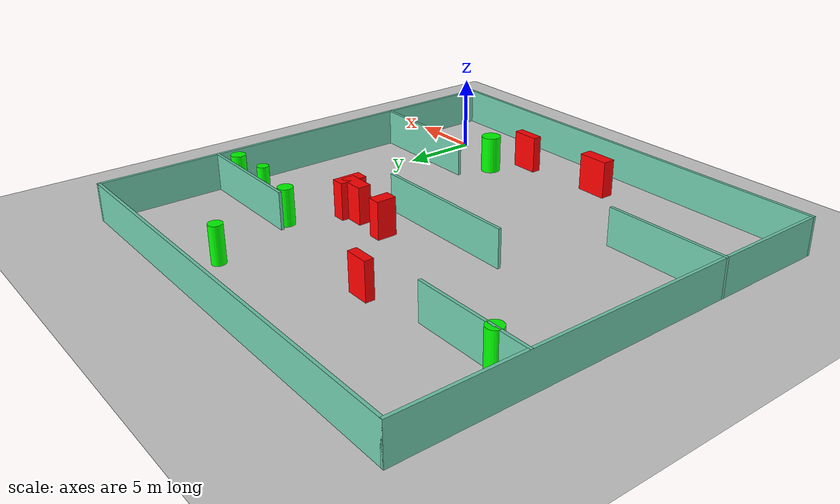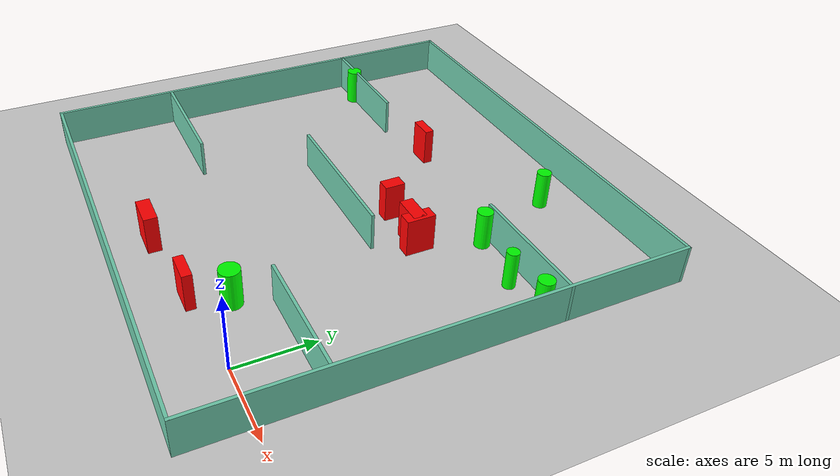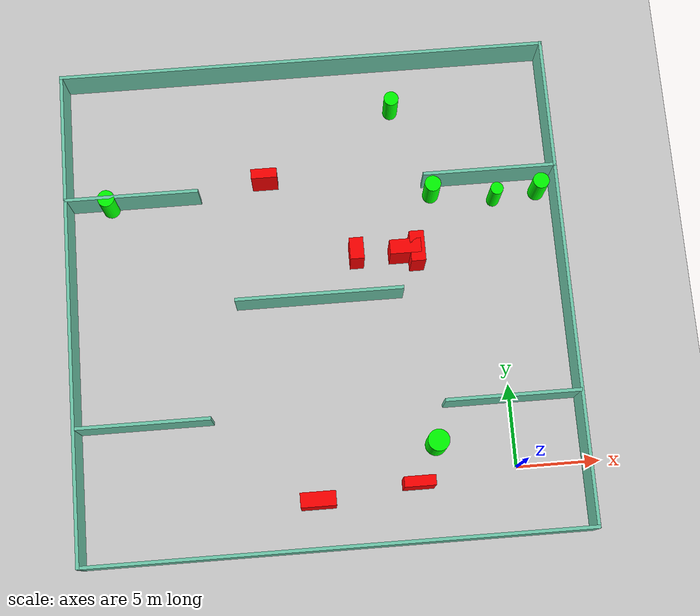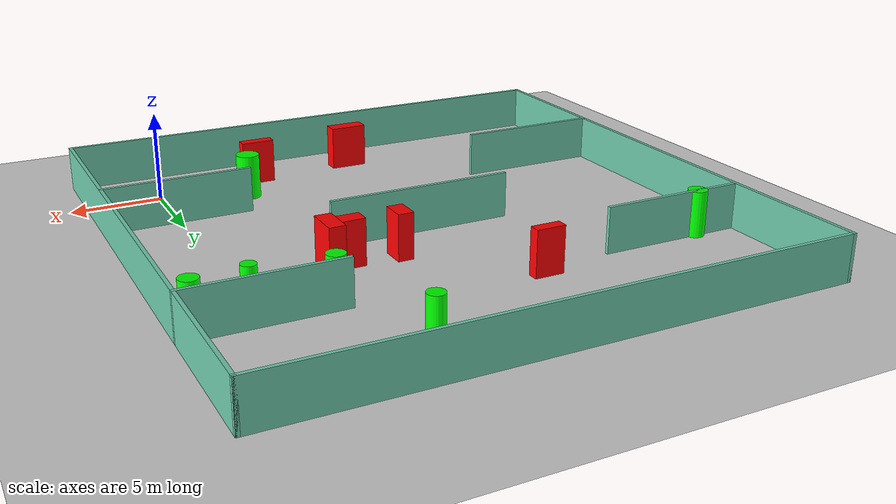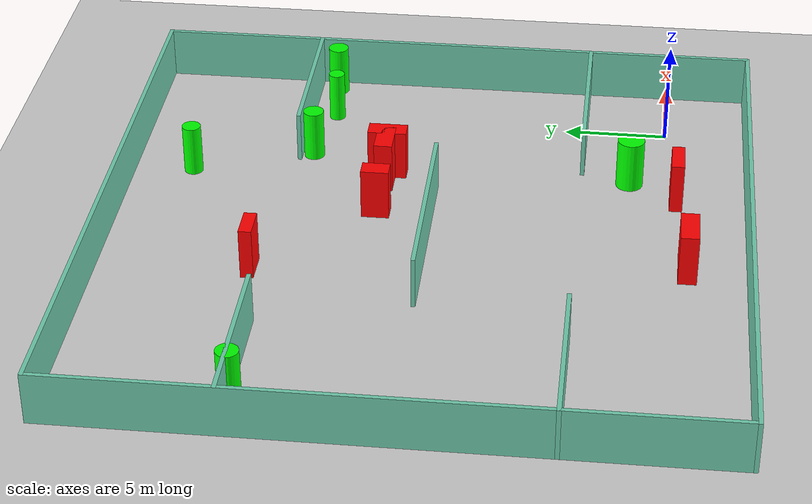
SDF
<sdf version="1.7">
 <world name="default">
  <light name="sun" type="directional">
   <pose>0 0 10 0 -0 0</pose>
   <diffuse>0.8 0.8 0.8 1</diffuse>
   <specular>0.2 0.2 0.2 1</specular>
   <attenuation>
    <range>1000</range>
    <constant>0.9</constant>
    <linear>0.01</linear>
    <quadratic>0.001</quadratic>
   </attenuation>
   <direction>-0.5 0.1 -0.9</direction>
   <spot><inner_angle>0</inner_angle><outer_angle>0</outer_angle><falloff>0</falloff></spot>
  </light>
  <model name="ground_plane">
   <static>1</static>
   <link name="link">
    <collision name="collision">
     <geometry><plane><normal>0 0 1</normal><size>100 100</size></plane></geometry>
     <surface>
      <contact><collide_bitmask>65535</collide_bitmask></contact>
      <friction><ode><mu>100</mu><mu2>50</mu2></ode></friction>
     </surface>
    </collision>
    <visual name="visual">
     <cast_shadows>0</cast_shadows>
     <geometry><plane><normal>0 0 1</normal><size>100 100</size></plane></geometry>
     <material>
      <script><uri>file://media/materials/scripts/gazebo.material</uri><name>Gazebo/Grey</name></script>
     </material>
    </visual>
   </link>
  </model>
  <gravity>0 0 -9.8</gravity>
  <magnetic_field>6e-06 2.3e-05 -4.2e-05</magnetic_field>
  <atmosphere type="adiabatic"/>
  <physics type="ode">
   <max_step_size>0.001</max_step_size>
   <real_time_factor>1</real_time_factor>
   <real_time_update_rate>1000</real_time_update_rate>
  </physics>
  <scene><ambient>0.4 0.4 0.4 1</ambient><background>0.7 0.7 0.7 1</background><shadows>1</shadows></scene>
  <spherical_coordinates>
   <surface_model>EARTH_WGS84</surface_model>
   <latitude_deg>0</latitude_deg>
   <longitude_deg>0</longitude_deg>
   <elevation>0</elevation>
   <heading_deg>0</heading_deg>
  </spherical_coordinates>
  <model name="my_base_walls">
   <link name="Wall_10">
    <collision name="Wall_10_Collision">
     <geometry><box><size>8.2 0.2 2.5</size></box></geometry>
     <pose>0 0 1.25 0 -0 0</pose>
    </collision>
    <visual name="Wall_10_Visual">
     <pose>0 0 1.25 0 -0 0</pose>
     <geometry><box><size>8.2 0.2 2.5</size></box></geometry>
     <material>
      <script><uri>file://media/materials/scripts/gazebo.material</uri><name>Gazebo/Grey</name></script>
      <ambient>0.435294 0.796078 0.67451 1</ambient>
     </material>
     <meta><layer>0</layer></meta>
    </visual>
    <pose>-11 -7 0 0 -0 0</pose>
   </link>
   <link name="Wall_12">
    <collision name="Wall_12_Collision">
     <geometry><box><size>8.2 0.2 2.5</size></box></geometry>
     <pose>0 0 1.25 0 -0 0</pose>
    </collision>
    <visual name="Wall_12_Visual">
     <pose>0 0 1.25 0 -0 0</pose>
     <geometry><box><size>8.2 0.2 2.5</size></box></geometry>
     <material>
      <script><uri>file://media/materials/scripts/gazebo.material</uri><name>Gazebo/Grey</name></script>
      <ambient>0.435294 0.796078 0.67451 1</ambient>
     </material>
     <meta><layer>0</layer></meta>
    </visual>
    <pose>-11 7 0 0 -0 0</pose>
   </link>
   <link name="Wall_14">
    <collision name="Wall_14_Collision">
     <geometry><box><size>8.2 0.2 2.5</size></box></geometry>
     <pose>0 0 1.25 0 -0 0</pose>
    </collision>
    <visual name="Wall_14_Visual">
     <pose>0 0 1.25 0 -0 0</pose>
     <geometry><box><size>8.2 0.2 2.5</size></box></geometry>
     <material>
      <script><uri>file://media/materials/scripts/gazebo.material</uri><name>Gazebo/Grey</name></script>
      <ambient>0.435294 0.796078 0.67451 1</ambient>
     </material>
     <meta><layer>0</layer></meta>
    </visual>
    <pose>11 7 0 0 -0 3.14159</pose>
   </link>
   <link name="Wall_16">
    <collision name="Wall_16_Collision">
     <geometry><box><size>10.2 0.2 2.5</size></box></geometry>
     <pose>0 0 1.25 0 -0 0</pose>
    </collision>
    <visual name="Wall_16_Visual">
     <pose>0 0 1.25 0 -0 0</pose>
     <geometry><box><size>10.2 0.2 2.5</size></box></geometry>
     <material>
      <script><uri>file://media/materials/scripts/gazebo.material</uri><name>Gazebo/Grey</name></script>
      <ambient>0.435294 0.796078 0.67451 1</ambient>
     </material>
     <meta><layer>0</layer></meta>
    </visual>
    <pose>0 0 0 0 -0 3.14159</pose>
   </link>
   <link name="Wall_2">
    <collision name="Wall_2_Collision">
     <geometry><box><size>30.2 0.2 2.5</size></box></geometry>
     <pose>0 0 1.25 0 -0 0</pose>
    </collision>
    <visual name="Wall_2_Visual">
     <pose>0 0 1.25 0 -0 0</pose>
     <geometry><box><size>30.2 0.2 2.5</size></box></geometry>
     <material>
      <script><uri>file://media/materials/scripts/gazebo.material</uri><name>Gazebo/Grey</name></script>
      <ambient>0.435294 0.796078 0.67451 1</ambient>
     </material>
     <meta><layer>0</layer></meta>
    </visual>
    <pose>0 -15 0 0 -0 3.14159</pose>
   </link>
   <link name="Wall_3">
    <collision name="Wall_3_Collision">
     <geometry><box><size>30.2 0.2 2.5</size></box></geometry>
     <pose>0 0 1.25 0 -0 0</pose>
    </collision>
    <visual name="Wall_3_Visual">
     <pose>0 0 1.25 0 -0 0</pose>
     <geometry><box><size>30.2 0.2 2.5</size></box></geometry>
     <material>
      <script><uri>file://media/materials/scripts/gazebo.material</uri><name>Gazebo/Grey</name></script>
      <ambient>0.435294 0.796078 0.67451 1</ambient>
     </material>
     <meta><layer>0</layer></meta>
    </visual>
    <pose>-15 0 0 0 -0 1.5708</pose>
   </link>
   <link name="Wall_4">
    <collision name="Wall_4_Collision">
     <geometry><box><size>30.2 0.2 2.5</size></box></geometry>
     <pose>0 0 1.25 0 -0 0</pose>
    </collision>
    <visual name="Wall_4_Visual">
     <pose>0 0 1.25 0 -0 0</pose>
     <geometry><box><size>30.2 0.2 2.5</size></box></geometry>
     <material>
      <script><uri>file://media/materials/scripts/gazebo.material</uri><name>Gazebo/Grey</name></script>
      <ambient>0.435294 0.796078 0.67451 1</ambient>
     </material>
     <meta><layer>0</layer></meta>
    </visual>
    <pose>0 15 0 0 -0 0</pose>
   </link>
   <link name="Wall_6">
    <collision name="Wall_6_Collision">
     <geometry><box><size>30.2 0.2 2.5</size></box></geometry>
     <pose>0 0 1.25 0 -0 0</pose>
    </collision>
    <visual name="Wall_6_Visual">
     <pose>0 0 1.25 0 -0 0</pose>
     <geometry><box><size>30.2 0.2 2.5</size></box></geometry>
     <material>
      <script><uri>file://media/materials/scripts/gazebo.material</uri><name>Gazebo/Grey</name></script>
      <ambient>0.435294 0.796078 0.67451 1</ambient>
     </material>
     <meta><layer>0</layer></meta>
    </visual>
    <pose>15 0 0 0 -0 1.5708</pose>
   </link>
   <link name="Wall_8">
    <collision name="Wall_8_Collision">
     <geometry><box><size>8.2 0.2 2.5</size></box></geometry>
     <pose>0 0 1.25 0 -0 0</pose>
    </collision>
    <visual name="Wall_8_Visual">
     <pose>0 0 1.25 0 -0 0</pose>
     <geometry><box><size>8.2 0.2 2.5</size></box></geometry>
     <material>
      <script><uri>file://media/materials/scripts/gazebo.material</uri><name>Gazebo/Grey</name></script>
      <ambient>0.435294 0.796078 0.67451 1</ambient>
     </material>
     <meta><layer>0</layer></meta>
    </visual>
    <pose>11 -7 0 0 -0 3.14159</pose>
   </link>
   <static>1</static>
   <pose>-11 11 0 0 -0 0</pose>
  </model>
  <model name="cylinder1">
   <static>1</static>
   <link name="link">
    <inertial>
     <mass>1</mass>
     <inertia><ixx>0.5</ixx><ixy>0</ixy><ixz>0</ixz><iyy>0.5</iyy><iyz>0</iyz><izz>1</izz></inertia>
    </inertial>
    <collision name="collision">
     <geometry><cylinder><radius>0.4970878901896541</radius><length>2.5</length></cylinder></geometry>
    </collision>
    <visual name="visual">
     <geometry><cylinder><radius>0.4970878901896541</radius><length>2.5</length></cylinder></geometry>
     <material>
      <ambient>0 1 0 1</ambient>
      <diffuse>0 1 0 1</diffuse>
      <specular>0.1 0.1 0.1 1</specular>
      <emissive>0 0 0 0</emissive>
     </material>
    </visual>
   </link>
   <pose>3.0654020582766215 17.01480314044926 1.25 0 0 0</pose>
  </model>
  <model name="cylinder2">
   <static>1</static>
   <link name="link">
    <inertial>
     <mass>1</mass>
     <inertia><ixx>0.5</ixx><ixy>0</ixy><ixz>0</ixz><iyy>0.5</iyy><iyz>0</iyz><izz>1</izz></inertia>
    </inertial>
    <collision name="collision">
     <geometry><cylinder><radius>0.6521052748412626</radius><length>2.5</length></cylinder></geometry>
    </collision>
    <visual name="visual">
     <geometry><cylinder><radius>0.6521052748412626</radius><length>2.5</length></cylinder></geometry>
     <material>
      <ambient>0 1 0 1</ambient>
      <diffuse>0 1 0 1</diffuse>
      <specular>0.1 0.1 0.1 1</specular>
      <emissive>0 0 0 0</emissive>
     </material>
    </visual>
   </link>
   <pose>-4.702932698644252 1.6851385153393874 1.25 0 0 0</pose>
  </model>
  <model name="cylinder3">
   <static>1</static>
   <link name="link">
    <inertial>
     <mass>1</mass>
     <inertia><ixx>0.5</ixx><ixy>0</ixy><ixz>0</ixz><iyy>0.5</iyy><iyz>0</iyz><izz>1</izz></inertia>
    </inertial>
    <collision name="collision">
     <geometry><cylinder><radius>0.39161017554160976</radius><length>2.5</length></cylinder></geometry>
    </collision>
    <visual name="visual">
     <geometry><cylinder><radius>0.39161017554160976</radius><length>2.5</length></cylinder></geometry>
     <material>
      <ambient>0 1 0 1</ambient>
      <diffuse>0 1 0 1</diffuse>
      <specular>0.1 0.1 0.1 1</specular>
      <emissive>0 0 0 0</emissive>
     </material>
    </visual>
   </link>
   <pose>0.3133740097979363 16.72332387429676 1.25 0 0 0</pose>
  </model>
  <model name="cylinder4">
   <static>1</static>
   <link name="link">
    <inertial>
     <mass>1</mass>
     <inertia><ixx>0.5</ixx><ixy>0</ixy><ixz>0</ixz><iyy>0.5</iyy><iyz>0</iyz><izz>1</izz></inertia>
    </inertial>
    <collision name="collision">
     <geometry><cylinder><radius>0.49761115520697696</radius><length>2.5</length></cylinder></geometry>
    </collision>
    <visual name="visual">
     <geometry><cylinder><radius>0.49761115520697696</radius><length>2.5</length></cylinder></geometry>
     <material>
      <ambient>0 1 0 1</ambient>
      <diffuse>0 1 0 1</diffuse>
      <specular>0.1 0.1 0.1 1</specular>
      <emissive>0 0 0 0</emissive>
     </material>
    </visual>
   </link>
   <pose>-3.557753851376905 17.33287976010775 1.25 0 0 0</pose>
  </model>
  <model name="cylinder5">
   <static>1</static>
   <link name="link">
    <inertial>
     <mass>1</mass>
     <inertia><ixx>0.5</ixx><ixy>0</ixy><ixz>0</ixz><iyy>0.5</iyy><iyz>0</iyz><izz>1</izz></inertia>
    </inertial>
    <collision name="collision">
     <geometry><cylinder><radius>0.45318015926637506</radius><length>2.5</length></cylinder></geometry>
    </collision>
    <visual name="visual">
     <geometry><cylinder><radius>0.45318015926637506</radius><length>2.5</length></cylinder></geometry>
     <material>
      <ambient>0 1 0 1</ambient>
      <diffuse>0 1 0 1</diffuse>
      <specular>0.1 0.1 0.1 1</specular>
      <emissive>0 0 0 0</emissive>
     </material>
    </visual>
   </link>
   <pose>-5.619339344036035 23.031226829779456 1.25 0 0 0</pose>
  </model>
  <model name="cylinder6">
   <static>1</static>
   <link name="link">
    <inertial>
     <mass>1</mass>
     <inertia><ixx>0.5</ixx><ixy>0</ixy><ixz>0</ixz><iyy>0.5</iyy><iyz>0</iyz><izz>1</izz></inertia>
    </inertial>
    <collision name="collision">
     <geometry><cylinder><radius>0.5175886010939751</radius><length>2.5</length></cylinder></geometry>
    </collision>
    <visual name="visual">
     <geometry><cylinder><radius>0.5175886010939751</radius><length>2.5</length></cylinder></geometry>
     <material>
      <ambient>0 1 0 1</ambient>
      <diffuse>0 1 0 1</diffuse>
      <specular>0.1 0.1 0.1 1</specular>
      <emissive>0 0 0 0</emissive>
     </material>
    </visual>
   </link>
   <pose>-23.529884423066914 17.92991274868384 1.25 0 0 0</pose>
  </model>
  <model name="box1">
   <static>1</static>
   <link name="link">
    <inertial>
     <mass>1</mass>
     <inertia><ixx>0.083</ixx><ixy>0</ixy><ixz>0</ixz><iyy>0.083</iyy><iyz>0</iyz><izz>0.083</izz></inertia>
    </inertial>
    <collision name="collision">
     <geometry><box><size>2.099929460807446 0.8681142380368005 2.5</size></box></geometry>
    </collision>
    <visual name="visual">
     <geometry><box><size>2.099929460807446 0.8681142380368005 2.5</size></box></geometry>
     <material>
      <ambient>1 0 0 1</ambient>
      <diffuse>1 0 0 1</diffuse>
      <specular>0.1 0.1 0.1 1</specular>
      <emissive>0 0 0 0</emissive>
     </material>
    </visual>
    <sensor name="my_contact" type="contact">
     <contact><collision>box_collision</collision><topic>__default_topic__</topic></contact>
    </sensor>
   </link>
   <pose>-11.987581037840524 -1.1727954124792772 1.25 0 0 0</pose>
  </model>
  <model name="box2">
   <static>1</static>
   <link name="link">
    <inertial>
     <mass>1</mass>
     <inertia><ixx>0.083</ixx><ixy>0</ixy><ixz>0</ixz><iyy>0.083</iyy><iyz>0</iyz><izz>0.083</izz></inertia>
    </inertial>
    <collision name="collision">
     <geometry><box><size>1.5836930316514393 0.6027668004770037 2.5</size></box></geometry>
    </collision>
    <visual name="visual">
     <geometry><box><size>1.5836930316514393 0.6027668004770037 2.5</size></box></geometry>
     <material>
      <ambient>1 0 0 1</ambient>
      <diffuse>1 0 0 1</diffuse>
      <specular>0.1 0.1 0.1 1</specular>
      <emissive>0 0 0 0</emissive>
     </material>
    </visual>
    <sensor name="my_contact" type="contact">
     <contact><collision>box_collision</collision><topic>__default_topic__</topic></contact>
    </sensor>
   </link>
   <pose>-13.829467215059584 18.794016014192437 1.25 0 0 0</pose>
  </model>
  <model name="box3">
   <static>1</static>
   <link name="link">
    <inertial>
     <mass>1</mass>
     <inertia><ixx>0.083</ixx><ixy>0</ixy><ixz>0</ixz><iyy>0.083</iyy><iyz>0</iyz><izz>0.083</izz></inertia>
    </inertial>
    <collision name="collision">
     <geometry><box><size>0.8561438061097479 1.3244534929531806 2.5</size></box></geometry>
    </collision>
    <visual name="visual">
     <geometry><box><size>0.8561438061097479 1.3244534929531806 2.5</size></box></geometry>
     <material>
      <ambient>1 0 0 1</ambient>
      <diffuse>1 0 0 1</diffuse>
      <specular>0.1 0.1 0.1 1</specular>
      <emissive>0 0 0 0</emissive>
     </material>
    </visual>
    <sensor name="my_contact" type="contact">
     <contact><collision>box_collision</collision><topic>__default_topic__</topic></contact>
    </sensor>
   </link>
   <pose>-8.541814666508873 13.626110006300419 1.25 0 0 0</pose>
  </model>
  <model name="box4">
   <static>1</static>
   <link name="link">
    <inertial>
     <mass>1</mass>
     <inertia><ixx>0.083</ixx><ixy>0</ixy><ixz>0</ixz><iyy>0.083</iyy><iyz>0</iyz><izz>0.083</izz></inertia>
    </inertial>
    <collision name="collision">
     <geometry><box><size>1.8672375448494867 0.6189718012844992 2.5</size></box></geometry>
    </collision>
    <visual name="visual">
     <geometry><box><size>1.8672375448494867 0.6189718012844992 2.5</size></box></geometry>
     <material>
      <ambient>1 0 0 1</ambient>
      <diffuse>1 0 0 1</diffuse>
      <specular>0.1 0.1 0.1 1</specular>
      <emissive>0 0 0 0</emissive>
     </material>
    </visual>
    <sensor name="my_contact" type="contact">
     <contact><collision>box_collision</collision><topic>__default_topic__</topic></contact>
    </sensor>
   </link>
   <pose>-6.009343949158595 -0.5856986260575092 1.25 0 0 0</pose>
  </model>
  <model name="box5">
   <static>1</static>
   <link name="link">
    <inertial>
     <mass>1</mass>
     <inertia><ixx>0.083</ixx><ixy>0</ixy><ixz>0</ixz><iyy>0.083</iyy><iyz>0</iyz><izz>0.083</izz></inertia>
    </inertial>
    <collision name="collision">
     <geometry><box><size>0.887336688597594 1.8725198245278438 2.5</size></box></geometry>
    </collision>
    <visual name="visual">
     <geometry><box><size>0.887336688597594 1.8725198245278438 2.5</size></box></geometry>
     <material>
      <ambient>1 0 0 1</ambient>
      <diffuse>1 0 0 1</diffuse>
      <specular>0.1 0.1 0.1 1</specular>
      <emissive>0 0 0 0</emissive>
     </material>
    </visual>
    <sensor name="my_contact" type="contact">
     <contact><collision>box_collision</collision><topic>__default_topic__</topic></contact>
    </sensor>
   </link>
   <pose>-4.862481553390271 13.491453349161183 1.25 0 0 0</pose>
  </model>
  <model name="box6">
   <static>1</static>
   <link name="link">
    <inertial>
     <mass>1</mass>
     <inertia><ixx>0.083</ixx><ixy>0</ixy><ixz>0</ixz><iyy>0.083</iyy><iyz>0</iyz><izz>0.083</izz></inertia>
    </inertial>
    <collision name="collision">
     <geometry><box><size>1.8915511924164816 0.8786833842285885 2.5</size></box></geometry>
    </collision>
    <visual name="visual">
     <geometry><box><size>1.8915511924164816 0.8786833842285885 2.5</size></box></geometry>
     <material>
      <ambient>1 0 0 1</ambient>
      <diffuse>1 0 0 1</diffuse>
      <specular>0.1 0.1 0.1 1</specular>
      <emissive>0 0 0 0</emissive>
     </material>
    </visual>
    <sensor name="my_contact" type="contact">
     <contact><collision>box_collision</collision><topic>__default_topic__</topic></contact>
    </sensor>
   </link>
   <pose>-5.592565994529679 13.530864950316293 1.25 0 0 0</pose>
  </model>
 </world>
</sdf>
